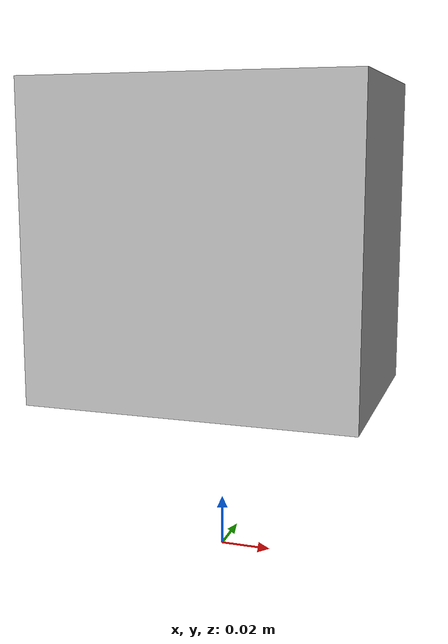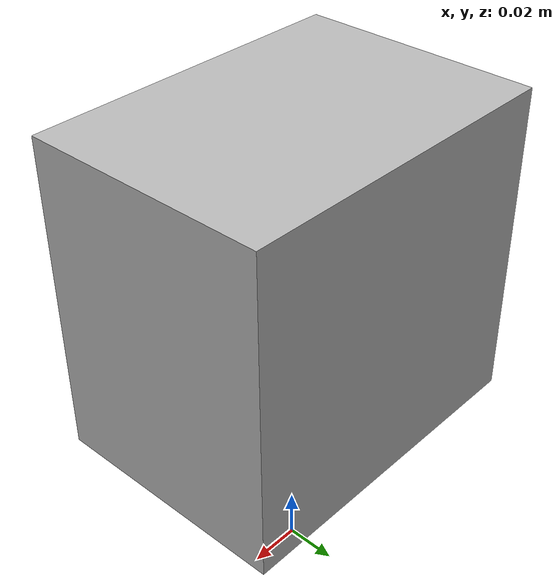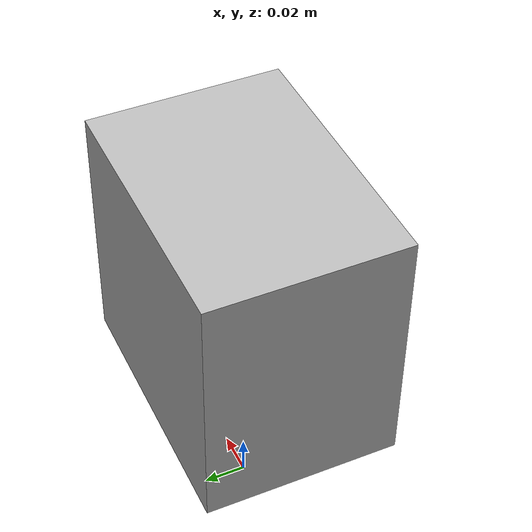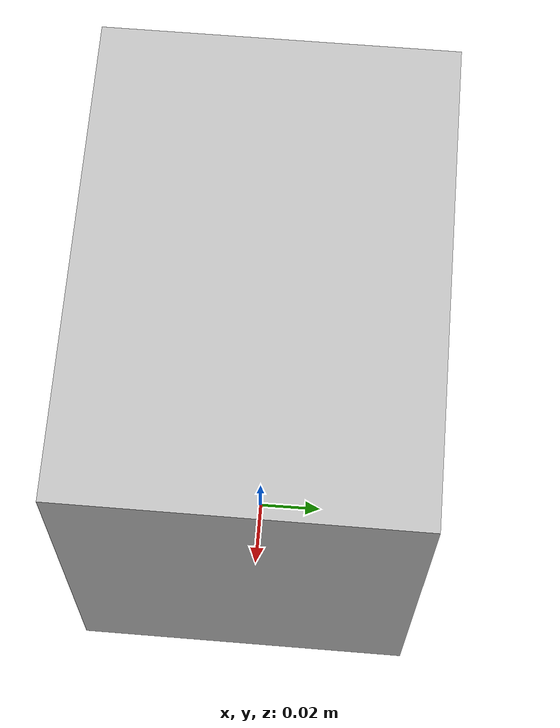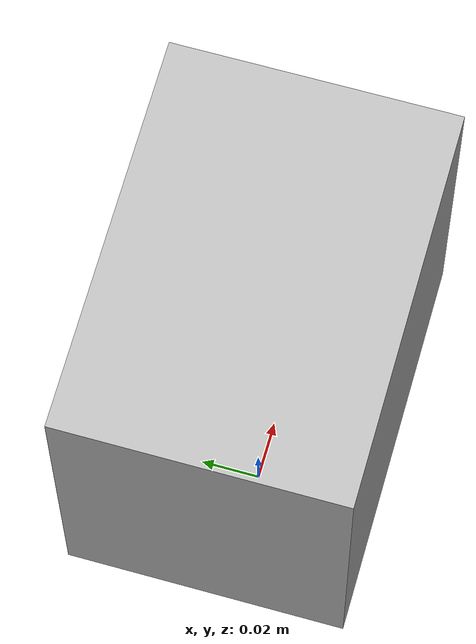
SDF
<?xml version="1.0" ?>
<sdf version="1.6">
  <model name="tag">
    <pose>0 0 0.125 0 0 0</pose>
    <link name="box">
      <pose>0 0 0 0 0 0</pose>
      <collision name="collision">
        <geometry>
          <box>
            <size>0.125 0.090 0.12</size>
          </box>
        </geometry>
      </collision>
      <visual name="visual">
        <geometry>
          <box>
            <size>0.125 0.090 0.12</size>
          </box>
        </geometry>
        <material>
          <script>
            <uri>model://turtlebot3_autorace_2020/tag/materials/scripts</uri>
            <uri>model://turtlebot3_autorace_2020/tag/materials/textures</uri>
            <name>tag</name>
          </script>
        </material>
      </visual>
    </link>
  </model>
</sdf>
